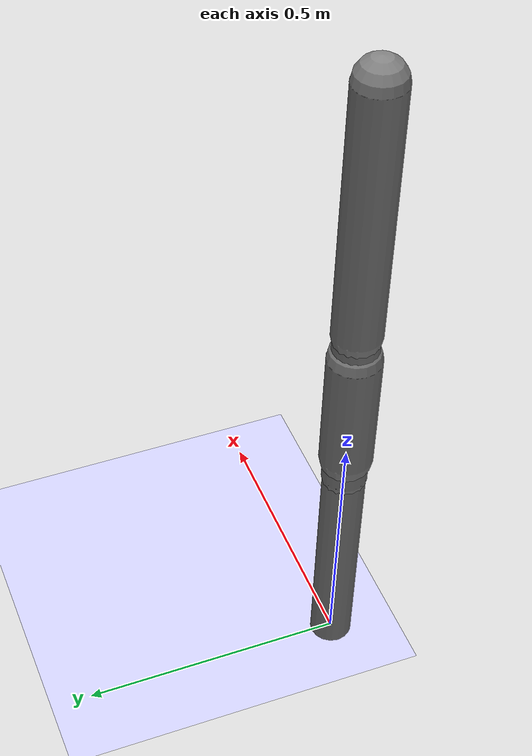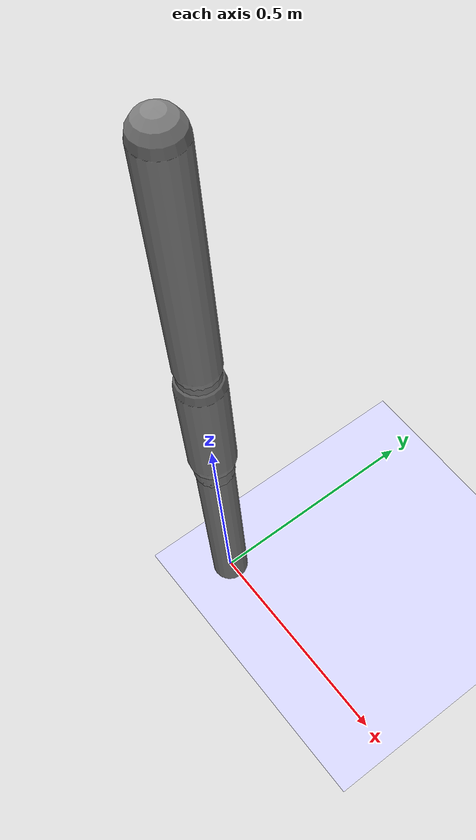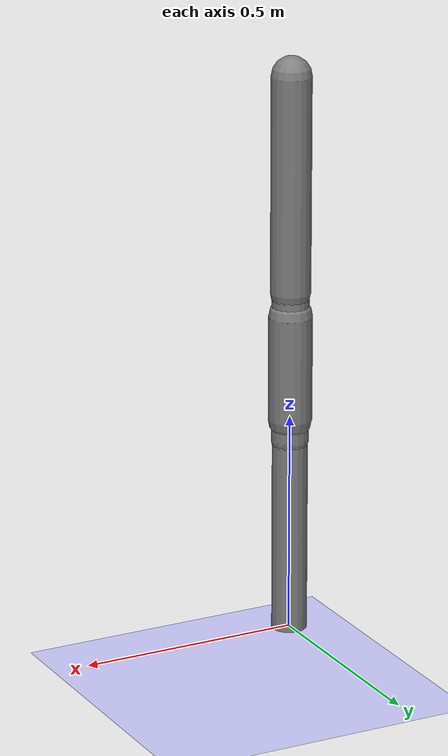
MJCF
<?xml version='1.0' encoding='UTF-8'?>
<mujoco model="robot_model">
  <worldbody>
    <light name="light" pos="0 -3 10" dir="0 0.5 -1" diffuse=".8 .8 .8" specular="0.1 0.1 0.1"/>
    <geom name="floor" type="plane" size="10.0 10.0 0.1" pos="0 0 0" rgba="0.8 0.8 1 1" contype="2" conaffinity="1"/>
    <body name="limb0" pos="0 0 0">
      <geom type="capsule" fromto="0 0 0 0 0 0.5601915570055294" size="0.04" density="1151.9840749983687" contype="1" conaffinity="2"/>
      <site type="sphere" size="0.01" name="limb0_site0" pos="0 0 0.3622446216786325"/>
      <freejoint name="limb0_root"/>
      <body name="limb1" pos="0 0 0.3622446216786325">
        <geom type="capsule" fromto="0 0 0 0 0 0.2133676792322861" size="0.034297757702990275" density="634.9287522386504" contype="1" conaffinity="2"/>
        <site type="sphere" size="0.01" name="limb1_site0" pos="0 0 0.13312068864892015"/>
        <site type="sphere" size="0.01" name="limb1_site1" pos="0 0 0.0816852574804446"/>
        <site type="sphere" size="0.01" name="limb1_site2" pos="0 0 0.08459961671907322"/>
        <body name="limb2" pos="0 0 0.13312068864892015">
          <geom type="capsule" fromto="0 0 0 0 0 0.23785756650714102" size="0.049138871714439904" density="645.8772761445443" contype="1" conaffinity="2"/>
          <joint name="joint_limb1_limb2_0" type="hinge" axis="0 1 0" range="-66.9652511213398 66.9652511213398" damping="5.0"/>
        </body>
        <body name="limb3" pos="0 0 0.0816852574804446">
          <geom type="capsule" fromto="0 0 0 0 0 0.3449366956007403" size="0.04182995516077146" density="888.638751137447" contype="1" conaffinity="2"/>
          <site type="sphere" size="0.01" name="limb3_site0" pos="0 0 0.34476469369601037"/>
          <site type="sphere" size="0.01" name="limb3_site1" pos="0 0 0.22417686865828207"/>
          <site type="sphere" size="0.01" name="limb3_site2" pos="0 0 0.22851488847648382"/>
          <body name="limb4" pos="0 0 0.34476469369601037">
            <geom type="capsule" fromto="0 0 0 0 0 0.48903672635852596" size="0.04516109305389064" density="785.406184230517" contype="1" conaffinity="2"/>
            <joint name="joint_limb3_limb4_0" type="hinge" axis="0 1 0" range="-97.60316524447805 97.60316524447805" damping="5.0"/>
          </body>
          <body name="limb5" pos="0 0 0.22417686865828207">
            <geom type="capsule" fromto="0 0 0 0 0 0.2102868528065015" size="0.03451406520881031" density="566.487314585425" contype="1" conaffinity="2"/>
            <joint name="joint_limb3_limb5_0" type="hinge" axis="0 1 0" range="-112.45970782742756 112.45970782742756" damping="5.0"/>
          </body>
          <body name="limb6" pos="0 0 0.22851488847648382">
            <geom type="capsule" fromto="0 0 0 0 0 0.46069774576177897" size="0.0332704348730845" density="1124.59993360464" contype="1" conaffinity="2"/>
            <joint name="joint_limb3_limb6_0" type="hinge" axis="0 1 0" range="-82.9398742241018 82.9398742241018" damping="5.0"/>
          </body>
          <joint name="joint_limb1_limb3_0" type="hinge" axis="0 1 0" range="-84.37282476408203 84.37282476408203" damping="5.0"/>
        </body>
        <body name="limb7" pos="0 0 0.08459961671907322">
          <geom type="capsule" fromto="0 0 0 0 0 0.2915545876731404" size="0.041653011905912966" density="980.8720051175214" contype="1" conaffinity="2"/>
          <joint name="joint_limb1_limb7_0" type="hinge" axis="0 1 0" range="-107.14717313770412 107.14717313770412" damping="5.0"/>
        </body>
        <joint name="joint_limb0_limb1_0" type="hinge" axis="0 1 0" range="-89.53684670583189 89.53684670583189" damping="5.0"/>
      </body>
    </body>
  </worldbody>
  <actuator>
    <position name="position_actuator_joint_limb0_limb1_0" joint="joint_limb0_limb1_0" gear="1.1522482362826674" inheritrange="1" kp="10.0"/>
    <position name="position_actuator_joint_limb1_limb2_0" joint="joint_limb1_limb2_0" gear="1.0628172104046523" inheritrange="1" kp="10.0"/>
    <position name="position_actuator_joint_limb1_limb3_0" joint="joint_limb1_limb3_0" gear="2.0" inheritrange="1" kp="10.0"/>
    <position name="position_actuator_joint_limb3_limb4_0" joint="joint_limb3_limb4_0" gear="1.7459471619076385" inheritrange="1" kp="10.0"/>
    <position name="position_actuator_joint_limb3_limb5_0" joint="joint_limb3_limb5_0" gear="0.7815731677580666" inheritrange="1" kp="10.0"/>
    <position name="position_actuator_joint_limb3_limb6_0" joint="joint_limb3_limb6_0" gear="1.8192611440742856" inheritrange="1" kp="10.0"/>
    <position name="position_actuator_joint_limb1_limb7_0" joint="joint_limb1_limb7_0" gear="0.7060054095369748" inheritrange="1" kp="10.0"/>
  </actuator>
</mujoco>
